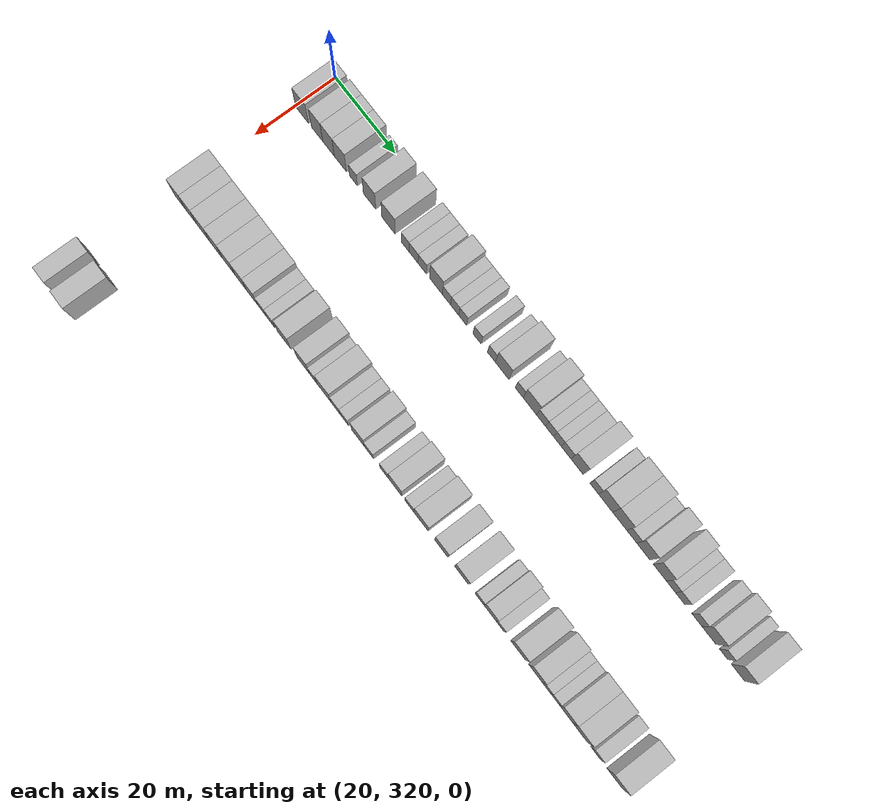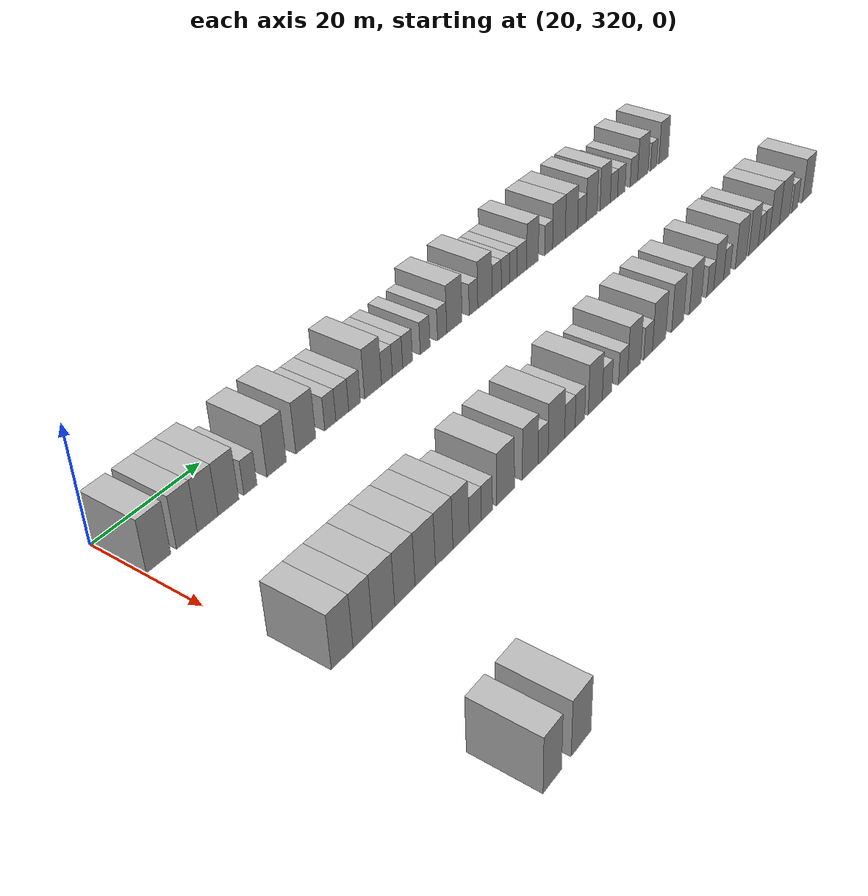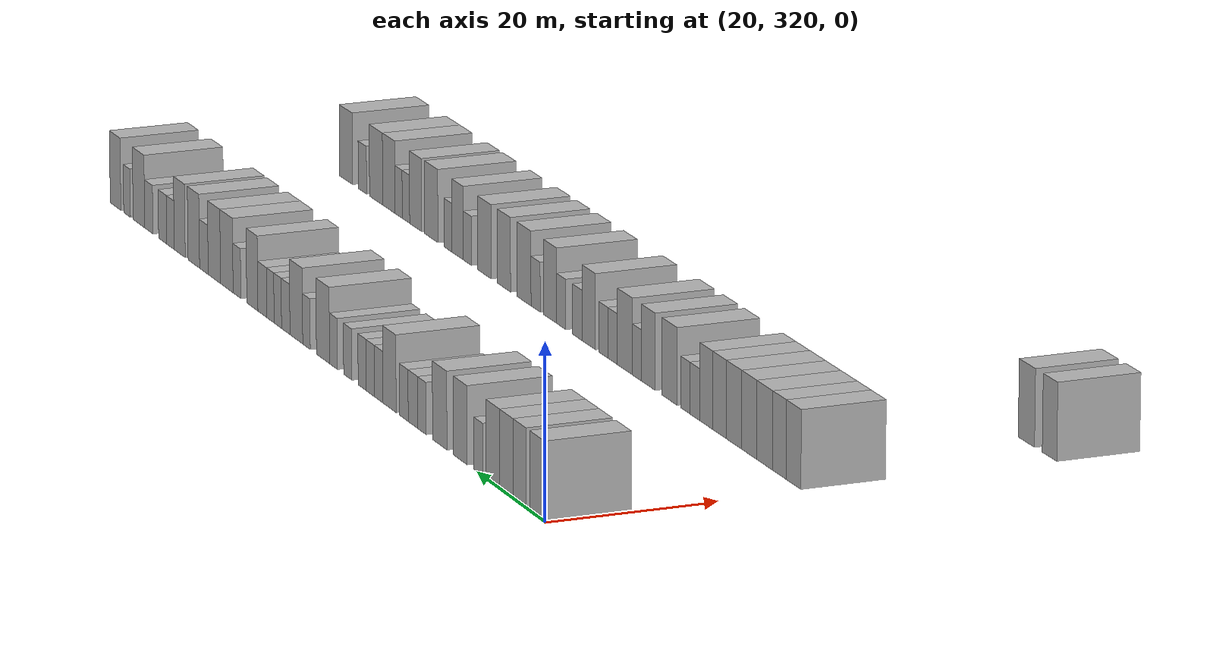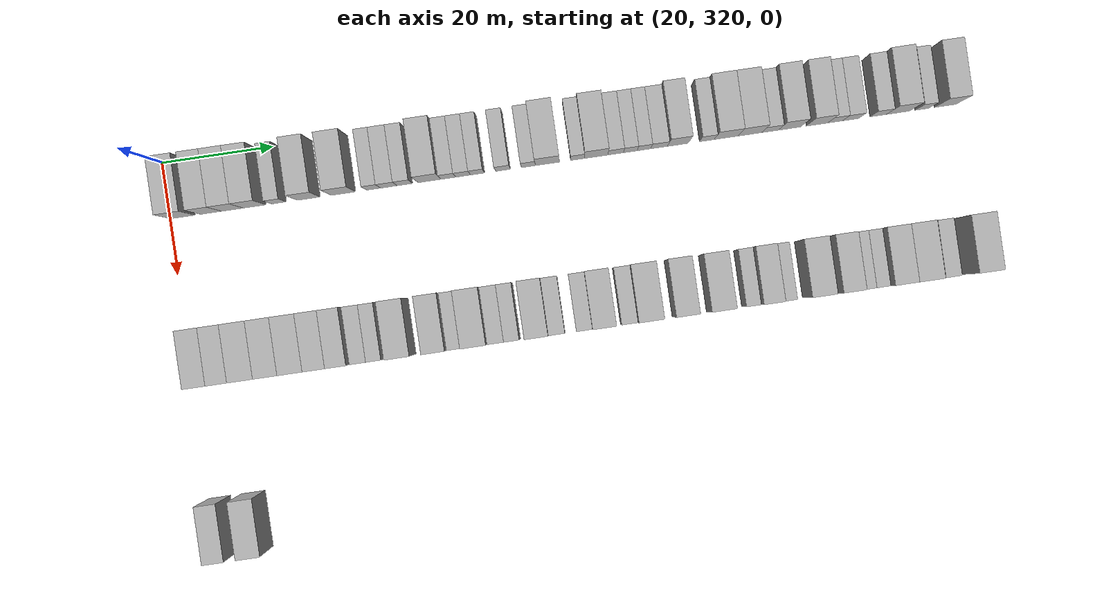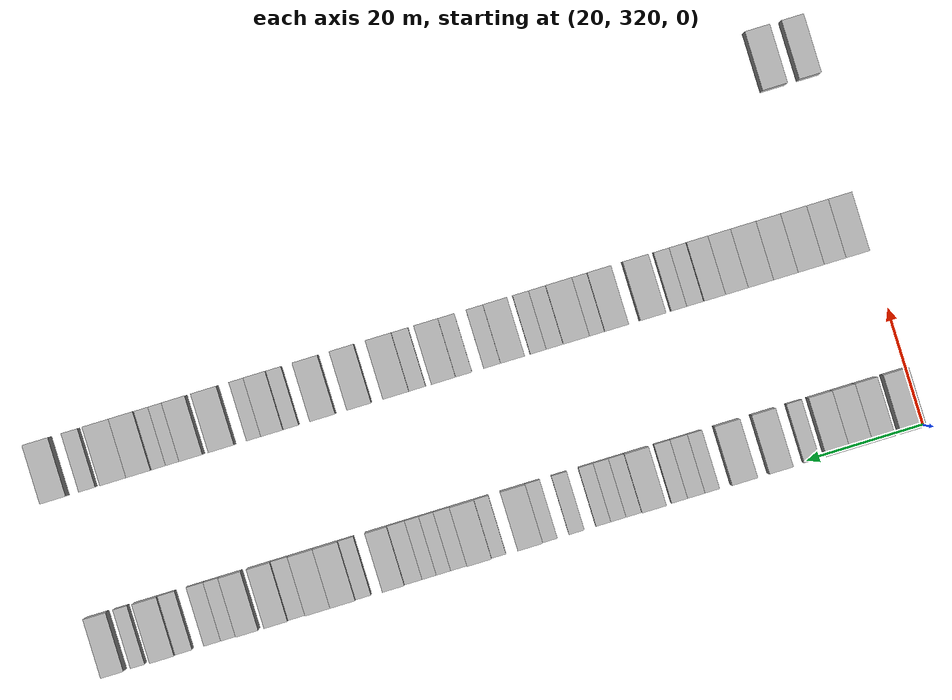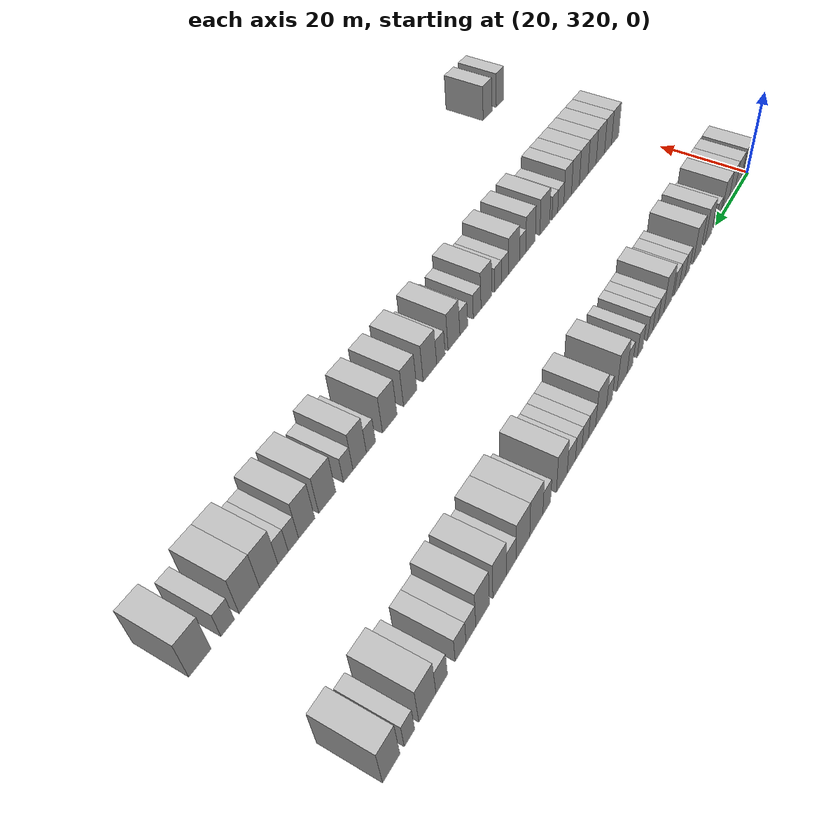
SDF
<sdf version="1.6">
 <world name="default">
  <model name="building_185">
   <static>1</static>
   <pose>25.0000 322.3802 0 0.000000 0.000000 0.000000</pose>
   <link name="link">
    <pose>0 0 4.50 0 0 0</pose>
    <collision name="collision"><geometry><box><size>10.0000 4.3233 9.0000</size></box></geometry></collision>
    <visual name="visual">
     <cast_shadows>0</cast_shadows>
     <geometry><box><size>10.0000 4.3233 9.0000</size></box></geometry>
     <material>
      <script>
       <uri>model://HANNAS_wall/materials/scripts</uri>
       <uri>model://HANNAS_wall/materials/textures</uri>
       <name>vrc/HANNAS_wall</name>
      </script>
     </material>
    </visual>
   </link>
  </model>
  <model name="building_186">
   <static>1</static>
   <pose>25.0000 327.4414 0 0.000000 0.000000 0.000000</pose>
   <link name="link">
    <pose>0 0 4.50 0 0 0</pose>
    <collision name="collision"><geometry><box><size>10.0000 3.7992 9.0000</size></box></geometry></collision>
    <visual name="visual">
     <cast_shadows>0</cast_shadows>
     <geometry><box><size>10.0000 3.7992 9.0000</size></box></geometry>
     <material>
      <script>
       <uri>model://HANNAS_wall/materials/scripts</uri>
       <uri>model://HANNAS_wall/materials/textures</uri>
       <name>vrc/HANNAS_wall</name>
      </script>
     </material>
    </visual>
   </link>
  </model>
  <model name="building_187">
   <static>1</static>
   <pose>25.0000 331.2803 0 0.000000 0.000000 0.000000</pose>
   <link name="link">
    <pose>0 0 4.50 0 0 0</pose>
    <collision name="collision"><geometry><box><size>10.0000 3.8786 9.0000</size></box></geometry></collision>
    <visual name="visual">
     <cast_shadows>0</cast_shadows>
     <geometry><box><size>10.0000 3.8786 9.0000</size></box></geometry>
     <material>
      <script>
       <uri>model://HANNAS_wall/materials/scripts</uri>
       <uri>model://HANNAS_wall/materials/textures</uri>
       <name>vrc/HANNAS_wall</name>
      </script>
     </material>
    </visual>
   </link>
  </model>
  <model name="building_188">
   <static>1</static>
   <pose>25.0000 335.2355 0 0.000000 0.000000 0.000000</pose>
   <link name="link">
    <pose>0 0 4.50 0 0 0</pose>
    <collision name="collision"><geometry><box><size>10.0000 4.0316 9.0000</size></box></geometry></collision>
    <visual name="visual">
     <cast_shadows>0</cast_shadows>
     <geometry><box><size>10.0000 4.0316 9.0000</size></box></geometry>
     <material>
      <script>
       <uri>model://HANNAS_wall/materials/scripts</uri>
       <uri>model://HANNAS_wall/materials/textures</uri>
       <name>vrc/HANNAS_wall</name>
      </script>
     </material>
    </visual>
   </link>
  </model>
  <model name="building_189">
   <static>1</static>
   <pose>25.0000 339.5626 0 0.000000 0.000000 0.000000</pose>
   <link name="link">
    <pose>0 0 3.00 0 0 0</pose>
    <collision name="collision"><geometry><box><size>10.0000 2.6227 6.0000</size></box></geometry></collision>
    <visual name="visual">
     <cast_shadows>0</cast_shadows>
     <geometry><box><size>10.0000 2.6227 6.0000</size></box></geometry>
     <material>
      <script>
       <uri>model://HANNAS_wall/materials/scripts</uri>
       <uri>model://HANNAS_wall/materials/textures</uri>
       <name>vrc/HANNAS_wall</name>
      </script>
     </material>
    </visual>
   </link>
  </model>
  <model name="building_190">
   <static>1</static>
   <pose>25.0000 344.9053 0 0.000000 0.000000 0.000000</pose>
   <link name="link">
    <pose>0 0 4.50 0 0 0</pose>
    <collision name="collision"><geometry><box><size>10.0000 4.0626 9.0000</size></box></geometry></collision>
    <visual name="visual">
     <cast_shadows>0</cast_shadows>
     <geometry><box><size>10.0000 4.0626 9.0000</size></box></geometry>
     <material>
      <script>
       <uri>model://HANNAS_wall/materials/scripts</uri>
       <uri>model://HANNAS_wall/materials/textures</uri>
       <name>vrc/HANNAS_wall</name>
      </script>
     </material>
    </visual>
   </link>
  </model>
  <model name="building_191">
   <static>1</static>
   <pose>25.0000 351.1098 0 0.000000 0.000000 0.000000</pose>
   <link name="link">
    <pose>0 0 4.50 0 0 0</pose>
    <collision name="collision"><geometry><box><size>10.0000 4.3464 9.0000</size></box></geometry></collision>
    <visual name="visual">
     <cast_shadows>0</cast_shadows>
     <geometry><box><size>10.0000 4.3464 9.0000</size></box></geometry>
     <material>
      <script>
       <uri>model://HANNAS_wall/materials/scripts</uri>
       <uri>model://HANNAS_wall/materials/textures</uri>
       <name>vrc/HANNAS_wall</name>
      </script>
     </material>
    </visual>
   </link>
  </model>
  <model name="building_192">
   <static>1</static>
   <pose>25.0000 356.5357 0 0.000000 0.000000 0.000000</pose>
   <link name="link">
    <pose>0 0 3.00 0 0 0</pose>
    <collision name="collision"><geometry><box><size>10.0000 2.5055 6.0000</size></box></geometry></collision>
    <visual name="visual">
     <cast_shadows>0</cast_shadows>
     <geometry><box><size>10.0000 2.5055 6.0000</size></box></geometry>
     <material>
      <script>
       <uri>model://HANNAS_wall/materials/scripts</uri>
       <uri>model://HANNAS_wall/materials/textures</uri>
       <name>vrc/HANNAS_wall</name>
      </script>
     </material>
    </visual>
   </link>
  </model>
  <model name="building_193">
   <static>1</static>
   <pose>25.0000 359.2709 0 0.000000 0.000000 0.000000</pose>
   <link name="link">
    <pose>0 0 3.00 0 0 0</pose>
    <collision name="collision"><geometry><box><size>10.0000 2.9649 6.0000</size></box></geometry></collision>
    <visual name="visual">
     <cast_shadows>0</cast_shadows>
     <geometry><box><size>10.0000 2.9649 6.0000</size></box></geometry>
     <material>
      <script>
       <uri>model://HANNAS_wall/materials/scripts</uri>
       <uri>model://HANNAS_wall/materials/textures</uri>
       <name>vrc/HANNAS_wall</name>
      </script>
     </material>
    </visual>
   </link>
  </model>
  <model name="building_194">
   <static>1</static>
   <pose>25.0000 362.1143 0 0.000000 0.000000 0.000000</pose>
   <link name="link">
    <pose>0 0 3.00 0 0 0</pose>
    <collision name="collision"><geometry><box><size>10.0000 2.7219 6.0000</size></box></geometry></collision>
    <visual name="visual">
     <cast_shadows>0</cast_shadows>
     <geometry><box><size>10.0000 2.7219 6.0000</size></box></geometry>
     <material>
      <script>
       <uri>model://HANNAS_wall/materials/scripts</uri>
       <uri>model://HANNAS_wall/materials/textures</uri>
       <name>vrc/HANNAS_wall</name>
      </script>
     </material>
    </visual>
   </link>
  </model>
  <model name="building_195">
   <static>1</static>
   <pose>25.0000 366.5426 0 0.000000 0.000000 0.000000</pose>
   <link name="link">
    <pose>0 0 4.50 0 0 0</pose>
    <collision name="collision"><geometry><box><size>10.0000 4.1347 9.0000</size></box></geometry></collision>
    <visual name="visual">
     <cast_shadows>0</cast_shadows>
     <geometry><box><size>10.0000 4.1347 9.0000</size></box></geometry>
     <material>
      <script>
       <uri>model://HANNAS_wall/materials/scripts</uri>
       <uri>model://HANNAS_wall/materials/textures</uri>
       <name>vrc/HANNAS_wall</name>
      </script>
     </material>
    </visual>
   </link>
  </model>
  <model name="building_196">
   <static>1</static>
   <pose>25.0000 369.9377 0 0.000000 0.000000 0.000000</pose>
   <link name="link">
    <pose>0 0 3.00 0 0 0</pose>
    <collision name="collision"><geometry><box><size>10.0000 2.6556 6.0000</size></box></geometry></collision>
    <visual name="visual">
     <cast_shadows>0</cast_shadows>
     <geometry><box><size>10.0000 2.6556 6.0000</size></box></geometry>
     <material>
      <script>
       <uri>model://HANNAS_wall/materials/scripts</uri>
       <uri>model://HANNAS_wall/materials/textures</uri>
       <name>vrc/HANNAS_wall</name>
      </script>
     </material>
    </visual>
   </link>
  </model>
  <model name="building_197">
   <static>1</static>
   <pose>25.0000 372.5712 0 0.000000 0.000000 0.000000</pose>
   <link name="link">
    <pose>0 0 3.00 0 0 0</pose>
    <collision name="collision"><geometry><box><size>10.0000 2.6115 6.0000</size></box></geometry></collision>
    <visual name="visual">
     <cast_shadows>0</cast_shadows>
     <geometry><box><size>10.0000 2.6115 6.0000</size></box></geometry>
     <material>
      <script>
       <uri>model://HANNAS_wall/materials/scripts</uri>
       <uri>model://HANNAS_wall/materials/textures</uri>
       <name>vrc/HANNAS_wall</name>
      </script>
     </material>
    </visual>
   </link>
  </model>
  <model name="building_198">
   <static>1</static>
   <pose>25.0000 375.1311 0 0.000000 0.000000 0.000000</pose>
   <link name="link">
    <pose>0 0 3.00 0 0 0</pose>
    <collision name="collision"><geometry><box><size>10.0000 2.5083 6.0000</size></box></geometry></collision>
    <visual name="visual">
     <cast_shadows>0</cast_shadows>
     <geometry><box><size>10.0000 2.5083 6.0000</size></box></geometry>
     <material>
      <script>
       <uri>model://HANNAS_wall/materials/scripts</uri>
       <uri>model://HANNAS_wall/materials/textures</uri>
       <name>vrc/HANNAS_wall</name>
      </script>
     </material>
    </visual>
   </link>
  </model>
  <model name="building_199">
   <static>1</static>
   <pose>25.0000 379.6912 0 0.000000 0.000000 0.000000</pose>
   <link name="link">
    <pose>0 0 3.00 0 0 0</pose>
    <collision name="collision"><geometry><box><size>10.0000 2.6118 6.0000</size></box></geometry></collision>
    <visual name="visual">
     <cast_shadows>0</cast_shadows>
     <geometry><box><size>10.0000 2.6118 6.0000</size></box></geometry>
     <material>
      <script>
       <uri>model://HANNAS_wall/materials/scripts</uri>
       <uri>model://HANNAS_wall/materials/textures</uri>
       <name>vrc/HANNAS_wall</name>
      </script>
     </material>
    </visual>
   </link>
  </model>
  <model name="building_200">
   <static>1</static>
   <pose>25.0000 384.2509 0 0.000000 0.000000 0.000000</pose>
   <link name="link">
    <pose>0 0 3.00 0 0 0</pose>
    <collision name="collision"><geometry><box><size>10.0000 2.5076 6.0000</size></box></geometry></collision>
    <visual name="visual">
     <cast_shadows>0</cast_shadows>
     <geometry><box><size>10.0000 2.5076 6.0000</size></box></geometry>
     <material>
      <script>
       <uri>model://HANNAS_wall/materials/scripts</uri>
       <uri>model://HANNAS_wall/materials/textures</uri>
       <name>vrc/HANNAS_wall</name>
      </script>
     </material>
    </visual>
   </link>
  </model>
  <model name="building_201">
   <static>1</static>
   <pose>25.0000 387.6377 0 0.000000 0.000000 0.000000</pose>
   <link name="link">
    <pose>0 0 4.50 0 0 0</pose>
    <collision name="collision"><geometry><box><size>10.0000 4.2661 9.0000</size></box></geometry></collision>
    <visual name="visual">
     <cast_shadows>0</cast_shadows>
     <geometry><box><size>10.0000 4.2661 9.0000</size></box></geometry>
     <material>
      <script>
       <uri>model://HANNAS_wall/materials/scripts</uri>
       <uri>model://HANNAS_wall/materials/textures</uri>
       <name>vrc/HANNAS_wall</name>
      </script>
     </material>
    </visual>
   </link>
  </model>
  <model name="building_202">
   <static>1</static>
   <pose>25.0000 393.0002 0 0.000000 0.000000 0.000000</pose>
   <link name="link">
    <pose>0 0 3.00 0 0 0</pose>
    <collision name="collision"><geometry><box><size>10.0000 2.4590 6.0000</size></box></geometry></collision>
    <visual name="visual">
     <cast_shadows>0</cast_shadows>
     <geometry><box><size>10.0000 2.4590 6.0000</size></box></geometry>
     <material>
      <script>
       <uri>model://HANNAS_wall/materials/scripts</uri>
       <uri>model://HANNAS_wall/materials/textures</uri>
       <name>vrc/HANNAS_wall</name>
      </script>
     </material>
    </visual>
   </link>
  </model>
  <model name="building_203">
   <static>1</static>
   <pose>25.0000 396.3231 0 0.000000 0.000000 0.000000</pose>
   <link name="link">
    <pose>0 0 4.50 0 0 0</pose>
    <collision name="collision"><geometry><box><size>10.0000 4.1868 9.0000</size></box></geometry></collision>
    <visual name="visual">
     <cast_shadows>0</cast_shadows>
     <geometry><box><size>10.0000 4.1868 9.0000</size></box></geometry>
     <material>
      <script>
       <uri>model://HANNAS_wall/materials/scripts</uri>
       <uri>model://HANNAS_wall/materials/textures</uri>
       <name>vrc/HANNAS_wall</name>
      </script>
     </material>
    </visual>
   </link>
  </model>
  <model name="building_204">
   <static>1</static>
   <pose>25.0000 399.8107 0 0.000000 0.000000 0.000000</pose>
   <link name="link">
    <pose>0 0 3.00 0 0 0</pose>
    <collision name="collision"><geometry><box><size>10.0000 2.7884 6.0000</size></box></geometry></collision>
    <visual name="visual">
     <cast_shadows>0</cast_shadows>
     <geometry><box><size>10.0000 2.7884 6.0000</size></box></geometry>
     <material>
      <script>
       <uri>model://HANNAS_wall/materials/scripts</uri>
       <uri>model://HANNAS_wall/materials/textures</uri>
       <name>vrc/HANNAS_wall</name>
      </script>
     </material>
    </visual>
   </link>
  </model>
  <model name="building_205">
   <static>1</static>
   <pose>25.0000 402.4339 0 0.000000 0.000000 0.000000</pose>
   <link name="link">
    <pose>0 0 3.00 0 0 0</pose>
    <collision name="collision"><geometry><box><size>10.0000 2.4579 6.0000</size></box></geometry></collision>
    <visual name="visual">
     <cast_shadows>0</cast_shadows>
     <geometry><box><size>10.0000 2.4579 6.0000</size></box></geometry>
     <material>
      <script>
       <uri>model://HANNAS_wall/materials/scripts</uri>
       <uri>model://HANNAS_wall/materials/textures</uri>
       <name>vrc/HANNAS_wall</name>
      </script>
     </material>
    </visual>
   </link>
  </model>
  <model name="building_206">
   <static>1</static>
   <pose>25.0000 404.8747 0 0.000000 0.000000 0.000000</pose>
   <link name="link">
    <pose>0 0 3.00 0 0 0</pose>
    <collision name="collision"><geometry><box><size>10.0000 2.4238 6.0000</size></box></geometry></collision>
    <visual name="visual">
     <cast_shadows>0</cast_shadows>
     <geometry><box><size>10.0000 2.4238 6.0000</size></box></geometry>
     <material>
      <script>
       <uri>model://HANNAS_wall/materials/scripts</uri>
       <uri>model://HANNAS_wall/materials/textures</uri>
       <name>vrc/HANNAS_wall</name>
      </script>
     </material>
    </visual>
   </link>
  </model>
  <model name="building_207">
   <static>1</static>
   <pose>25.0000 407.5808 0 0.000000 0.000000 0.000000</pose>
   <link name="link">
    <pose>0 0 3.00 0 0 0</pose>
    <collision name="collision"><geometry><box><size>10.0000 2.9883 6.0000</size></box></geometry></collision>
    <visual name="visual">
     <cast_shadows>0</cast_shadows>
     <geometry><box><size>10.0000 2.9883 6.0000</size></box></geometry>
     <material>
      <script>
       <uri>model://HANNAS_wall/materials/scripts</uri>
       <uri>model://HANNAS_wall/materials/textures</uri>
       <name>vrc/HANNAS_wall</name>
      </script>
     </material>
    </visual>
   </link>
  </model>
  <model name="building_208">
   <static>1</static>
   <pose>25.0000 410.9459 0 0.000000 0.000000 0.000000</pose>
   <link name="link">
    <pose>0 0 4.50 0 0 0</pose>
    <collision name="collision"><geometry><box><size>10.0000 3.7419 9.0000</size></box></geometry></collision>
    <visual name="visual">
     <cast_shadows>0</cast_shadows>
     <geometry><box><size>10.0000 3.7419 9.0000</size></box></geometry>
     <material>
      <script>
       <uri>model://HANNAS_wall/materials/scripts</uri>
       <uri>model://HANNAS_wall/materials/textures</uri>
       <name>vrc/HANNAS_wall</name>
      </script>
     </material>
    </visual>
   </link>
  </model>
  <model name="building_209">
   <static>1</static>
   <pose>25.0000 416.1337 0 0.000000 0.000000 0.000000</pose>
   <link name="link">
    <pose>0 0 3.00 0 0 0</pose>
    <collision name="collision"><geometry><box><size>10.0000 2.6339 6.0000</size></box></geometry></collision>
    <visual name="visual">
     <cast_shadows>0</cast_shadows>
     <geometry><box><size>10.0000 2.6339 6.0000</size></box></geometry>
     <material>
      <script>
       <uri>model://HANNAS_wall/materials/scripts</uri>
       <uri>model://HANNAS_wall/materials/textures</uri>
       <name>vrc/HANNAS_wall</name>
      </script>
     </material>
    </visual>
   </link>
  </model>
  <model name="building_210">
   <static>1</static>
   <pose>25.0000 419.5902 0 0.000000 0.000000 0.000000</pose>
   <link name="link">
    <pose>0 0 4.50 0 0 0</pose>
    <collision name="collision"><geometry><box><size>10.0000 4.2791 9.0000</size></box></geometry></collision>
    <visual name="visual">
     <cast_shadows>0</cast_shadows>
     <geometry><box><size>10.0000 4.2791 9.0000</size></box></geometry>
     <material>
      <script>
       <uri>model://HANNAS_wall/materials/scripts</uri>
       <uri>model://HANNAS_wall/materials/textures</uri>
       <name>vrc/HANNAS_wall</name>
      </script>
     </material>
    </visual>
   </link>
  </model>
  <model name="building_211">
   <static>1</static>
   <pose>25.0000 423.8549 0 0.000000 0.000000 0.000000</pose>
   <link name="link">
    <pose>0 0 4.50 0 0 0</pose>
    <collision name="collision"><geometry><box><size>10.0000 4.2503 9.0000</size></box></geometry></collision>
    <visual name="visual">
     <cast_shadows>0</cast_shadows>
     <geometry><box><size>10.0000 4.2503 9.0000</size></box></geometry>
     <material>
      <script>
       <uri>model://HANNAS_wall/materials/scripts</uri>
       <uri>model://HANNAS_wall/materials/textures</uri>
       <name>vrc/HANNAS_wall</name>
      </script>
     </material>
    </visual>
   </link>
  </model>
  <model name="building_212">
   <static>1</static>
   <pose>25.0000 427.4736 0 0.000000 0.000000 0.000000</pose>
   <link name="link">
    <pose>0 0 3.00 0 0 0</pose>
    <collision name="collision"><geometry><box><size>10.0000 2.9870 6.0000</size></box></geometry></collision>
    <visual name="visual">
     <cast_shadows>0</cast_shadows>
     <geometry><box><size>10.0000 2.9870 6.0000</size></box></geometry>
     <material>
      <script>
       <uri>model://HANNAS_wall/materials/scripts</uri>
       <uri>model://HANNAS_wall/materials/textures</uri>
       <name>vrc/HANNAS_wall</name>
      </script>
     </material>
    </visual>
   </link>
  </model>
  <model name="building_213">
   <static>1</static>
   <pose>25.0000 430.9642 0 0.000000 0.000000 0.000000</pose>
   <link name="link">
    <pose>0 0 4.50 0 0 0</pose>
    <collision name="collision"><geometry><box><size>10.0000 3.9942 9.0000</size></box></geometry></collision>
    <visual name="visual">
     <cast_shadows>0</cast_shadows>
     <geometry><box><size>10.0000 3.9942 9.0000</size></box></geometry>
     <material>
      <script>
       <uri>model://HANNAS_wall/materials/scripts</uri>
       <uri>model://HANNAS_wall/materials/textures</uri>
       <name>vrc/HANNAS_wall</name>
      </script>
     </material>
    </visual>
   </link>
  </model>
  <model name="building_214">
   <static>1</static>
   <pose>25.0000 435.8755 0 0.000000 0.000000 0.000000</pose>
   <link name="link">
    <pose>0 0 4.50 0 0 0</pose>
    <collision name="collision"><geometry><box><size>10.0000 3.8285 9.0000</size></box></geometry></collision>
    <visual name="visual">
     <cast_shadows>0</cast_shadows>
     <geometry><box><size>10.0000 3.8285 9.0000</size></box></geometry>
     <material>
      <script>
       <uri>model://HANNAS_wall/materials/scripts</uri>
       <uri>model://HANNAS_wall/materials/textures</uri>
       <name>vrc/HANNAS_wall</name>
      </script>
     </material>
    </visual>
   </link>
  </model>
  <model name="building_215">
   <static>1</static>
   <pose>25.0000 439.1296 0 0.000000 0.000000 0.000000</pose>
   <link name="link">
    <pose>0 0 3.00 0 0 0</pose>
    <collision name="collision"><geometry><box><size>10.0000 2.6798 6.0000</size></box></geometry></collision>
    <visual name="visual">
     <cast_shadows>0</cast_shadows>
     <geometry><box><size>10.0000 2.6798 6.0000</size></box></geometry>
     <material>
      <script>
       <uri>model://HANNAS_wall/materials/scripts</uri>
       <uri>model://HANNAS_wall/materials/textures</uri>
       <name>vrc/HANNAS_wall</name>
      </script>
     </material>
    </visual>
   </link>
  </model>
  <model name="building_216">
   <static>1</static>
   <pose>25.0000 441.9095 0 0.000000 0.000000 0.000000</pose>
   <link name="link">
    <pose>0 0 3.00 0 0 0</pose>
    <collision name="collision"><geometry><box><size>10.0000 2.8800 6.0000</size></box></geometry></collision>
    <visual name="visual">
     <cast_shadows>0</cast_shadows>
     <geometry><box><size>10.0000 2.8800 6.0000</size></box></geometry>
     <material>
      <script>
       <uri>model://HANNAS_wall/materials/scripts</uri>
       <uri>model://HANNAS_wall/materials/textures</uri>
       <name>vrc/HANNAS_wall</name>
      </script>
     </material>
    </visual>
   </link>
  </model>
  <model name="building_217">
   <static>1</static>
   <pose>25.0000 446.8076 0 0.000000 0.000000 0.000000</pose>
   <link name="link">
    <pose>0 0 3.00 0 0 0</pose>
    <collision name="collision"><geometry><box><size>10.0000 2.9163 6.0000</size></box></geometry></collision>
    <visual name="visual">
     <cast_shadows>0</cast_shadows>
     <geometry><box><size>10.0000 2.9163 6.0000</size></box></geometry>
     <material>
      <script>
       <uri>model://HANNAS_wall/materials/scripts</uri>
       <uri>model://HANNAS_wall/materials/textures</uri>
       <name>vrc/HANNAS_wall</name>
      </script>
     </material>
    </visual>
   </link>
  </model>
  <model name="building_218">
   <static>1</static>
   <pose>25.0000 450.3537 0 0.000000 0.000000 0.000000</pose>
   <link name="link">
    <pose>0 0 4.50 0 0 0</pose>
    <collision name="collision"><geometry><box><size>10.0000 4.1758 9.0000</size></box></geometry></collision>
    <visual name="visual">
     <cast_shadows>0</cast_shadows>
     <geometry><box><size>10.0000 4.1758 9.0000</size></box></geometry>
     <material>
      <script>
       <uri>model://HANNAS_wall/materials/scripts</uri>
       <uri>model://HANNAS_wall/materials/textures</uri>
       <name>vrc/HANNAS_wall</name>
      </script>
     </material>
    </visual>
   </link>
  </model>
  <model name="building_219">
   <static>1</static>
   <pose>25.0000 454.6615 0 0.000000 0.000000 0.000000</pose>
   <link name="link">
    <pose>0 0 3.00 0 0 0</pose>
    <collision name="collision"><geometry><box><size>10.0000 2.4398 6.0000</size></box></geometry></collision>
    <visual name="visual">
     <cast_shadows>0</cast_shadows>
     <geometry><box><size>10.0000 2.4398 6.0000</size></box></geometry>
     <material>
      <script>
       <uri>model://HANNAS_wall/materials/scripts</uri>
       <uri>model://HANNAS_wall/materials/textures</uri>
       <name>vrc/HANNAS_wall</name>
      </script>
     </material>
    </visual>
   </link>
  </model>
  <model name="building_220">
   <static>1</static>
   <pose>25.0000 458.8216 0 0.000000 0.000000 0.000000</pose>
   <link name="link">
    <pose>0 0 4.50 0 0 0</pose>
    <collision name="collision"><geometry><box><size>10.0000 3.8805 9.0000</size></box></geometry></collision>
    <visual name="visual">
     <cast_shadows>0</cast_shadows>
     <geometry><box><size>10.0000 3.8805 9.0000</size></box></geometry>
     <material>
      <script>
       <uri>model://HANNAS_wall/materials/scripts</uri>
       <uri>model://HANNAS_wall/materials/textures</uri>
       <name>vrc/HANNAS_wall</name>
      </script>
     </material>
    </visual>
   </link>
  </model>
  <model name="building_420">
   <static>1</static>
   <pose>55.0000 322.7543 0 0.000000 0.000000 0.000000</pose>
   <link name="link">
    <pose>0 0 4.50 0 0 0</pose>
    <collision name="collision"><geometry><box><size>10.0000 4.0267 9.0000</size></box></geometry></collision>
    <visual name="visual">
     <cast_shadows>0</cast_shadows>
     <geometry><box><size>10.0000 4.0267 9.0000</size></box></geometry>
     <material>
      <script>
       <uri>model://HANNAS_wall/materials/scripts</uri>
       <uri>model://HANNAS_wall/materials/textures</uri>
       <name>vrc/HANNAS_wall</name>
      </script>
     </material>
    </visual>
   </link>
  </model>
  <model name="building_421">
   <static>1</static>
   <pose>55.0000 326.6200 0 0.000000 0.000000 0.000000</pose>
   <link name="link">
    <pose>0 0 4.50 0 0 0</pose>
    <collision name="collision"><geometry><box><size>10.0000 3.7048 9.0000</size></box></geometry></collision>
    <visual name="visual">
     <cast_shadows>0</cast_shadows>
     <geometry><box><size>10.0000 3.7048 9.0000</size></box></geometry>
     <material>
      <script>
       <uri>model://HANNAS_wall/materials/scripts</uri>
       <uri>model://HANNAS_wall/materials/textures</uri>
       <name>vrc/HANNAS_wall</name>
      </script>
     </material>
    </visual>
   </link>
  </model>
  <model name="building_422">
   <static>1</static>
   <pose>55.0000 330.6899 0 0.000000 0.000000 0.000000</pose>
   <link name="link">
    <pose>0 0 4.50 0 0 0</pose>
    <collision name="collision"><geometry><box><size>10.0000 4.4349 9.0000</size></box></geometry></collision>
    <visual name="visual">
     <cast_shadows>0</cast_shadows>
     <geometry><box><size>10.0000 4.4349 9.0000</size></box></geometry>
     <material>
      <script>
       <uri>model://HANNAS_wall/materials/scripts</uri>
       <uri>model://HANNAS_wall/materials/textures</uri>
       <name>vrc/HANNAS_wall</name>
      </script>
     </material>
    </visual>
   </link>
  </model>
  <model name="building_423">
   <static>1</static>
   <pose>55.0000 334.9963 0 0.000000 0.000000 0.000000</pose>
   <link name="link">
    <pose>0 0 4.50 0 0 0</pose>
    <collision name="collision"><geometry><box><size>10.0000 4.1779 9.0000</size></box></geometry></collision>
    <visual name="visual">
     <cast_shadows>0</cast_shadows>
     <geometry><box><size>10.0000 4.1779 9.0000</size></box></geometry>
     <material>
      <script>
       <uri>model://HANNAS_wall/materials/scripts</uri>
       <uri>model://HANNAS_wall/materials/textures</uri>
       <name>vrc/HANNAS_wall</name>
      </script>
     </material>
    </visual>
   </link>
  </model>
  <model name="building_424">
   <static>1</static>
   <pose>55.0000 339.2430 0 0.000000 0.000000 0.000000</pose>
   <link name="link">
    <pose>0 0 4.50 0 0 0</pose>
    <collision name="collision"><geometry><box><size>10.0000 4.3155 9.0000</size></box></geometry></collision>
    <visual name="visual">
     <cast_shadows>0</cast_shadows>
     <geometry><box><size>10.0000 4.3155 9.0000</size></box></geometry>
     <material>
      <script>
       <uri>model://HANNAS_wall/materials/scripts</uri>
       <uri>model://HANNAS_wall/materials/textures</uri>
       <name>vrc/HANNAS_wall</name>
      </script>
     </material>
    </visual>
   </link>
  </model>
  <model name="building_425">
   <static>1</static>
   <pose>55.0000 343.3285 0 0.000000 0.000000 0.000000</pose>
   <link name="link">
    <pose>0 0 4.50 0 0 0</pose>
    <collision name="collision"><geometry><box><size>10.0000 3.8555 9.0000</size></box></geometry></collision>
    <visual name="visual">
     <cast_shadows>0</cast_shadows>
     <geometry><box><size>10.0000 3.8555 9.0000</size></box></geometry>
     <material>
      <script>
       <uri>model://HANNAS_wall/materials/scripts</uri>
       <uri>model://HANNAS_wall/materials/textures</uri>
       <name>vrc/HANNAS_wall</name>
      </script>
     </material>
    </visual>
   </link>
  </model>
  <model name="building_426">
   <static>1</static>
   <pose>55.0000 347.0705 0 0.000000 0.000000 0.000000</pose>
   <link name="link">
    <pose>0 0 4.50 0 0 0</pose>
    <collision name="collision"><geometry><box><size>10.0000 3.6286 9.0000</size></box></geometry></collision>
    <visual name="visual">
     <cast_shadows>0</cast_shadows>
     <geometry><box><size>10.0000 3.6286 9.0000</size></box></geometry>
     <material>
      <script>
       <uri>model://HANNAS_wall/materials/scripts</uri>
       <uri>model://HANNAS_wall/materials/textures</uri>
       <name>vrc/HANNAS_wall</name>
      </script>
     </material>
    </visual>
   </link>
  </model>
  <model name="building_427">
   <static>1</static>
   <pose>55.0000 350.3137 0 0.000000 0.000000 0.000000</pose>
   <link name="link">
    <pose>0 0 3.00 0 0 0</pose>
    <collision name="collision"><geometry><box><size>10.0000 2.8578 6.0000</size></box></geometry></collision>
    <visual name="visual">
     <cast_shadows>0</cast_shadows>
     <geometry><box><size>10.0000 2.8578 6.0000</size></box></geometry>
     <material>
      <script>
       <uri>model://HANNAS_wall/materials/scripts</uri>
       <uri>model://HANNAS_wall/materials/textures</uri>
       <name>vrc/HANNAS_wall</name>
      </script>
     </material>
    </visual>
   </link>
  </model>
  <model name="building_428">
   <static>1</static>
   <pose>55.0000 353.0625 0 0.000000 0.000000 0.000000</pose>
   <link name="link">
    <pose>0 0 3.00 0 0 0</pose>
    <collision name="collision"><geometry><box><size>10.0000 2.6397 6.0000</size></box></geometry></collision>
    <visual name="visual">
     <cast_shadows>0</cast_shadows>
     <geometry><box><size>10.0000 2.6397 6.0000</size></box></geometry>
     <material>
      <script>
       <uri>model://HANNAS_wall/materials/scripts</uri>
       <uri>model://HANNAS_wall/materials/textures</uri>
       <name>vrc/HANNAS_wall</name>
      </script>
     </material>
    </visual>
   </link>
  </model>
  <model name="building_429">
   <static>1</static>
   <pose>55.0000 357.5604 0 0.000000 0.000000 0.000000</pose>
   <link name="link">
    <pose>0 0 4.50 0 0 0</pose>
    <collision name="collision"><geometry><box><size>10.0000 4.3562 9.0000</size></box></geometry></collision>
    <visual name="visual">
     <cast_shadows>0</cast_shadows>
     <geometry><box><size>10.0000 4.3562 9.0000</size></box></geometry>
     <material>
      <script>
       <uri>model://HANNAS_wall/materials/scripts</uri>
       <uri>model://HANNAS_wall/materials/textures</uri>
       <name>vrc/HANNAS_wall</name>
      </script>
     </material>
    </visual>
   </link>
  </model>
  <model name="building_430">
   <static>1</static>
   <pose>55.0000 363.7625 0 0.000000 0.000000 0.000000</pose>
   <link name="link">
    <pose>0 0 4.50 0 0 0</pose>
    <collision name="collision"><geometry><box><size>10.0000 4.0480 9.0000</size></box></geometry></collision>
    <visual name="visual">
     <cast_shadows>0</cast_shadows>
     <geometry><box><size>10.0000 4.0480 9.0000</size></box></geometry>
     <material>
      <script>
       <uri>model://HANNAS_wall/materials/scripts</uri>
       <uri>model://HANNAS_wall/materials/textures</uri>
       <name>vrc/HANNAS_wall</name>
      </script>
     </material>
    </visual>
   </link>
  </model>
  <model name="building_431">
   <static>1</static>
   <pose>55.0000 367.0962 0 0.000000 0.000000 0.000000</pose>
   <link name="link">
    <pose>0 0 3.00 0 0 0</pose>
    <collision name="collision"><geometry><box><size>10.0000 2.6195 6.0000</size></box></geometry></collision>
    <visual name="visual">
     <cast_shadows>0</cast_shadows>
     <geometry><box><size>10.0000 2.6195 6.0000</size></box></geometry>
     <material>
      <script>
       <uri>model://HANNAS_wall/materials/scripts</uri>
       <uri>model://HANNAS_wall/materials/textures</uri>
       <name>vrc/HANNAS_wall</name>
      </script>
     </material>
    </visual>
   </link>
  </model>
  <model name="building_432">
   <static>1</static>
   <pose>55.0000 370.6301 0 0.000000 0.000000 0.000000</pose>
   <link name="link">
    <pose>0 0 4.50 0 0 0</pose>
    <collision name="collision"><geometry><box><size>10.0000 4.4482 9.0000</size></box></geometry></collision>
    <visual name="visual">
     <cast_shadows>0</cast_shadows>
     <geometry><box><size>10.0000 4.4482 9.0000</size></box></geometry>
     <material>
      <script>
       <uri>model://HANNAS_wall/materials/scripts</uri>
       <uri>model://HANNAS_wall/materials/textures</uri>
       <name>vrc/HANNAS_wall</name>
      </script>
     </material>
    </visual>
   </link>
  </model>
  <model name="building_433">
   <static>1</static>
   <pose>55.0000 374.2970 0 0.000000 0.000000 0.000000</pose>
   <link name="link">
    <pose>0 0 3.00 0 0 0</pose>
    <collision name="collision"><geometry><box><size>10.0000 2.8857 6.0000</size></box></geometry></collision>
    <visual name="visual">
     <cast_shadows>0</cast_shadows>
     <geometry><box><size>10.0000 2.8857 6.0000</size></box></geometry>
     <material>
      <script>
       <uri>model://HANNAS_wall/materials/scripts</uri>
       <uri>model://HANNAS_wall/materials/textures</uri>
       <name>vrc/HANNAS_wall</name>
      </script>
     </material>
    </visual>
   </link>
  </model>
  <model name="building_434">
   <static>1</static>
   <pose>55.0000 377.0927 0 0.000000 0.000000 0.000000</pose>
   <link name="link">
    <pose>0 0 3.00 0 0 0</pose>
    <collision name="collision"><geometry><box><size>10.0000 2.7057 6.0000</size></box></geometry></collision>
    <visual name="visual">
     <cast_shadows>0</cast_shadows>
     <geometry><box><size>10.0000 2.7057 6.0000</size></box></geometry>
     <material>
      <script>
       <uri>model://HANNAS_wall/materials/scripts</uri>
       <uri>model://HANNAS_wall/materials/textures</uri>
       <name>vrc/HANNAS_wall</name>
      </script>
     </material>
    </visual>
   </link>
  </model>
  <model name="building_435">
   <static>1</static>
   <pose>55.0000 381.4916 0 0.000000 0.000000 0.000000</pose>
   <link name="link">
    <pose>0 0 4.50 0 0 0</pose>
    <collision name="collision"><geometry><box><size>10.0000 4.0921 9.0000</size></box></geometry></collision>
    <visual name="visual">
     <cast_shadows>0</cast_shadows>
     <geometry><box><size>10.0000 4.0921 9.0000</size></box></geometry>
     <material>
      <script>
       <uri>model://HANNAS_wall/materials/scripts</uri>
       <uri>model://HANNAS_wall/materials/textures</uri>
       <name>vrc/HANNAS_wall</name>
      </script>
     </material>
    </visual>
   </link>
  </model>
  <model name="building_436">
   <static>1</static>
   <pose>55.0000 384.9758 0 0.000000 0.000000 0.000000</pose>
   <link name="link">
    <pose>0 0 3.00 0 0 0</pose>
    <collision name="collision"><geometry><box><size>10.0000 2.8764 6.0000</size></box></geometry></collision>
    <visual name="visual">
     <cast_shadows>0</cast_shadows>
     <geometry><box><size>10.0000 2.8764 6.0000</size></box></geometry>
     <material>
      <script>
       <uri>model://HANNAS_wall/materials/scripts</uri>
       <uri>model://HANNAS_wall/materials/textures</uri>
       <name>vrc/HANNAS_wall</name>
      </script>
     </material>
    </visual>
   </link>
  </model>
  <model name="building_437">
   <static>1</static>
   <pose>55.0000 389.8126 0 0.000000 0.000000 0.000000</pose>
   <link name="link">
    <pose>0 0 3.00 0 0 0</pose>
    <collision name="collision"><geometry><box><size>10.0000 2.7971 6.0000</size></box></geometry></collision>
    <visual name="visual">
     <cast_shadows>0</cast_shadows>
     <geometry><box><size>10.0000 2.7971 6.0000</size></box></geometry>
     <material>
      <script>
       <uri>model://HANNAS_wall/materials/scripts</uri>
       <uri>model://HANNAS_wall/materials/textures</uri>
       <name>vrc/HANNAS_wall</name>
      </script>
     </material>
    </visual>
   </link>
  </model>
  <model name="building_438">
   <static>1</static>
   <pose>55.0000 393.2690 0 0.000000 0.000000 0.000000</pose>
   <link name="link">
    <pose>0 0 4.50 0 0 0</pose>
    <collision name="collision"><geometry><box><size>10.0000 4.1158 9.0000</size></box></geometry></collision>
    <visual name="visual">
     <cast_shadows>0</cast_shadows>
     <geometry><box><size>10.0000 4.1158 9.0000</size></box></geometry>
     <material>
      <script>
       <uri>model://HANNAS_wall/materials/scripts</uri>
       <uri>model://HANNAS_wall/materials/textures</uri>
       <name>vrc/HANNAS_wall</name>
      </script>
     </material>
    </visual>
   </link>
  </model>
  <model name="building_439">
   <static>1</static>
   <pose>55.0000 397.7477 0 0.000000 0.000000 0.000000</pose>
   <link name="link">
    <pose>0 0 3.00 0 0 0</pose>
    <collision name="collision"><geometry><box><size>10.0000 2.8415 6.0000</size></box></geometry></collision>
    <visual name="visual">
     <cast_shadows>0</cast_shadows>
     <geometry><box><size>10.0000 2.8415 6.0000</size></box></geometry>
     <material>
      <script>
       <uri>model://HANNAS_wall/materials/scripts</uri>
       <uri>model://HANNAS_wall/materials/textures</uri>
       <name>vrc/HANNAS_wall</name>
      </script>
     </material>
    </visual>
   </link>
  </model>
  <model name="building_440">
   <static>1</static>
   <pose>55.0000 401.3731 0 0.000000 0.000000 0.000000</pose>
   <link name="link">
    <pose>0 0 4.50 0 0 0</pose>
    <collision name="collision"><geometry><box><size>10.0000 4.4095 9.0000</size></box></geometry></collision>
    <visual name="visual">
     <cast_shadows>0</cast_shadows>
     <geometry><box><size>10.0000 4.4095 9.0000</size></box></geometry>
     <material>
      <script>
       <uri>model://HANNAS_wall/materials/scripts</uri>
       <uri>model://HANNAS_wall/materials/textures</uri>
       <name>vrc/HANNAS_wall</name>
      </script>
     </material>
    </visual>
   </link>
  </model>
  <model name="building_441">
   <static>1</static>
   <pose>55.0000 407.6455 0 0.000000 0.000000 0.000000</pose>
   <link name="link">
    <pose>0 0 4.50 0 0 0</pose>
    <collision name="collision"><geometry><box><size>10.0000 4.1353 9.0000</size></box></geometry></collision>
    <visual name="visual">
     <cast_shadows>0</cast_shadows>
     <geometry><box><size>10.0000 4.1353 9.0000</size></box></geometry>
     <material>
      <script>
       <uri>model://HANNAS_wall/materials/scripts</uri>
       <uri>model://HANNAS_wall/materials/textures</uri>
       <name>vrc/HANNAS_wall</name>
      </script>
     </material>
    </visual>
   </link>
  </model>
  <model name="building_442">
   <static>1</static>
   <pose>55.0000 413.8670 0 0.000000 0.000000 0.000000</pose>
   <link name="link">
    <pose>0 0 4.50 0 0 0</pose>
    <collision name="collision"><geometry><box><size>10.0000 4.3076 9.0000</size></box></geometry></collision>
    <visual name="visual">
     <cast_shadows>0</cast_shadows>
     <geometry><box><size>10.0000 4.3076 9.0000</size></box></geometry>
     <material>
      <script>
       <uri>model://HANNAS_wall/materials/scripts</uri>
       <uri>model://HANNAS_wall/materials/textures</uri>
       <name>vrc/HANNAS_wall</name>
      </script>
     </material>
    </visual>
   </link>
  </model>
  <model name="building_443">
   <static>1</static>
   <pose>55.0000 419.3128 0 0.000000 0.000000 0.000000</pose>
   <link name="link">
    <pose>0 0 3.00 0 0 0</pose>
    <collision name="collision"><geometry><box><size>10.0000 2.5841 6.0000</size></box></geometry></collision>
    <visual name="visual">
     <cast_shadows>0</cast_shadows>
     <geometry><box><size>10.0000 2.5841 6.0000</size></box></geometry>
     <material>
      <script>
       <uri>model://HANNAS_wall/materials/scripts</uri>
       <uri>model://HANNAS_wall/materials/textures</uri>
       <name>vrc/HANNAS_wall</name>
      </script>
     </material>
    </visual>
   </link>
  </model>
  <model name="building_444">
   <static>1</static>
   <pose>55.0000 422.4714 0 0.000000 0.000000 0.000000</pose>
   <link name="link">
    <pose>0 0 4.50 0 0 0</pose>
    <collision name="collision"><geometry><box><size>10.0000 3.7331 9.0000</size></box></geometry></collision>
    <visual name="visual">
     <cast_shadows>0</cast_shadows>
     <geometry><box><size>10.0000 3.7331 9.0000</size></box></geometry>
     <material>
      <script>
       <uri>model://HANNAS_wall/materials/scripts</uri>
       <uri>model://HANNAS_wall/materials/textures</uri>
       <name>vrc/HANNAS_wall</name>
      </script>
     </material>
    </visual>
   </link>
  </model>
  <model name="building_445">
   <static>1</static>
   <pose>55.0000 425.6263 0 0.000000 0.000000 0.000000</pose>
   <link name="link">
    <pose>0 0 3.00 0 0 0</pose>
    <collision name="collision"><geometry><box><size>10.0000 2.5768 6.0000</size></box></geometry></collision>
    <visual name="visual">
     <cast_shadows>0</cast_shadows>
     <geometry><box><size>10.0000 2.5768 6.0000</size></box></geometry>
     <material>
      <script>
       <uri>model://HANNAS_wall/materials/scripts</uri>
       <uri>model://HANNAS_wall/materials/textures</uri>
       <name>vrc/HANNAS_wall</name>
      </script>
     </material>
    </visual>
   </link>
  </model>
  <model name="building_446">
   <static>1</static>
   <pose>55.0000 431.1003 0 0.000000 0.000000 0.000000</pose>
   <link name="link">
    <pose>0 0 4.50 0 0 0</pose>
    <collision name="collision"><geometry><box><size>10.0000 4.3711 9.0000</size></box></geometry></collision>
    <visual name="visual">
     <cast_shadows>0</cast_shadows>
     <geometry><box><size>10.0000 4.3711 9.0000</size></box></geometry>
     <material>
      <script>
       <uri>model://HANNAS_wall/materials/scripts</uri>
       <uri>model://HANNAS_wall/materials/textures</uri>
       <name>vrc/HANNAS_wall</name>
      </script>
     </material>
    </visual>
   </link>
  </model>
  <model name="building_447">
   <static>1</static>
   <pose>55.0000 436.2661 0 0.000000 0.000000 0.000000</pose>
   <link name="link">
    <pose>0 0 4.50 0 0 0</pose>
    <collision name="collision"><geometry><box><size>10.0000 3.9604 9.0000</size></box></geometry></collision>
    <visual name="visual">
     <cast_shadows>0</cast_shadows>
     <geometry><box><size>10.0000 3.9604 9.0000</size></box></geometry>
     <material>
      <script>
       <uri>model://HANNAS_wall/materials/scripts</uri>
       <uri>model://HANNAS_wall/materials/textures</uri>
       <name>vrc/HANNAS_wall</name>
      </script>
     </material>
    </visual>
   </link>
  </model>
  <model name="building_448">
   <static>1</static>
   <pose>55.0000 439.4802 0 0.000000 0.000000 0.000000</pose>
   <link name="link">
    <pose>0 0 3.00 0 0 0</pose>
    <collision name="collision"><geometry><box><size>10.0000 2.4678 6.0000</size></box></geometry></collision>
    <visual name="visual">
     <cast_shadows>0</cast_shadows>
     <geometry><box><size>10.0000 2.4678 6.0000</size></box></geometry>
     <material>
      <script>
       <uri>model://HANNAS_wall/materials/scripts</uri>
       <uri>model://HANNAS_wall/materials/textures</uri>
       <name>vrc/HANNAS_wall</name>
      </script>
     </material>
    </visual>
   </link>
  </model>
  <model name="building_449">
   <static>1</static>
   <pose>55.0000 441.9225 0 0.000000 0.000000 0.000000</pose>
   <link name="link">
    <pose>0 0 3.00 0 0 0</pose>
    <collision name="collision"><geometry><box><size>10.0000 2.4168 6.0000</size></box></geometry></collision>
    <visual name="visual">
     <cast_shadows>0</cast_shadows>
     <geometry><box><size>10.0000 2.4168 6.0000</size></box></geometry>
     <material>
      <script>
       <uri>model://HANNAS_wall/materials/scripts</uri>
       <uri>model://HANNAS_wall/materials/textures</uri>
       <name>vrc/HANNAS_wall</name>
      </script>
     </material>
    </visual>
   </link>
  </model>
  <model name="building_450">
   <static>1</static>
   <pose>55.0000 445.2013 0 0.000000 0.000000 0.000000</pose>
   <link name="link">
    <pose>0 0 4.50 0 0 0</pose>
    <collision name="collision"><geometry><box><size>10.0000 4.1409 9.0000</size></box></geometry></collision>
    <visual name="visual">
     <cast_shadows>0</cast_shadows>
     <geometry><box><size>10.0000 4.1409 9.0000</size></box></geometry>
     <material>
      <script>
       <uri>model://HANNAS_wall/materials/scripts</uri>
       <uri>model://HANNAS_wall/materials/textures</uri>
       <name>vrc/HANNAS_wall</name>
      </script>
     </material>
    </visual>
   </link>
  </model>
  <model name="building_451">
   <static>1</static>
   <pose>55.0000 449.5080 0 0.000000 0.000000 0.000000</pose>
   <link name="link">
    <pose>0 0 4.50 0 0 0</pose>
    <collision name="collision"><geometry><box><size>10.0000 4.4725 9.0000</size></box></geometry></collision>
    <visual name="visual">
     <cast_shadows>0</cast_shadows>
     <geometry><box><size>10.0000 4.4725 9.0000</size></box></geometry>
     <material>
      <script>
       <uri>model://HANNAS_wall/materials/scripts</uri>
       <uri>model://HANNAS_wall/materials/textures</uri>
       <name>vrc/HANNAS_wall</name>
      </script>
     </material>
    </visual>
   </link>
  </model>
  <model name="building_452">
   <static>1</static>
   <pose>55.0000 454.1510 0 0.000000 0.000000 0.000000</pose>
   <link name="link">
    <pose>0 0 3.00 0 0 0</pose>
    <collision name="collision"><geometry><box><size>10.0000 2.8134 6.0000</size></box></geometry></collision>
    <visual name="visual">
     <cast_shadows>0</cast_shadows>
     <geometry><box><size>10.0000 2.8134 6.0000</size></box></geometry>
     <material>
      <script>
       <uri>model://HANNAS_wall/materials/scripts</uri>
       <uri>model://HANNAS_wall/materials/textures</uri>
       <name>vrc/HANNAS_wall</name>
      </script>
     </material>
    </visual>
   </link>
  </model>
  <model name="building_453">
   <static>1</static>
   <pose>55.0000 459.7597 0 0.000000 0.000000 0.000000</pose>
   <link name="link">
    <pose>0 0 4.50 0 0 0</pose>
    <collision name="collision"><geometry><box><size>10.0000 4.4041 9.0000</size></box></geometry></collision>
    <visual name="visual">
     <cast_shadows>0</cast_shadows>
     <geometry><box><size>10.0000 4.4041 9.0000</size></box></geometry>
     <material>
      <script>
       <uri>model://HANNAS_wall/materials/scripts</uri>
       <uri>model://HANNAS_wall/materials/textures</uri>
       <name>vrc/HANNAS_wall</name>
      </script>
     </material>
    </visual>
   </link>
  </model>
  <model name="building_641">
   <static>1</static>
   <pose>85.0000 321.6715 0 0.000000 0.000000 0.000000</pose>
   <link name="link">
    <pose>0 0 4.50 0 0 0</pose>
    <collision name="collision"><geometry><box><size>10.0000 3.7608 9.0000</size></box></geometry></collision>
    <visual name="visual">
     <cast_shadows>0</cast_shadows>
     <geometry><box><size>10.0000 3.7608 9.0000</size></box></geometry>
     <material>
      <script>
       <uri>model://HANNAS_wall/materials/scripts</uri>
       <uri>model://HANNAS_wall/materials/textures</uri>
       <name>vrc/HANNAS_wall</name>
      </script>
     </material>
    </visual>
   </link>
  </model>
  <model name="building_642">
   <static>1</static>
   <pose>85.0000 327.6714 0 0.000000 0.000000 0.000000</pose>
   <link name="link">
    <pose>0 0 4.50 0 0 0</pose>
    <collision name="collision"><geometry><box><size>10.0000 4.2390 9.0000</size></box></geometry></collision>
    <visual name="visual">
     <cast_shadows>0</cast_shadows>
     <geometry><box><size>10.0000 4.2390 9.0000</size></box></geometry>
     <material>
      <script>
       <uri>model://HANNAS_wall/materials/scripts</uri>
       <uri>model://HANNAS_wall/materials/textures</uri>
       <name>vrc/HANNAS_wall</name>
      </script>
     </material>
    </visual>
   </link>
  </model>
 </world>
</sdf>
